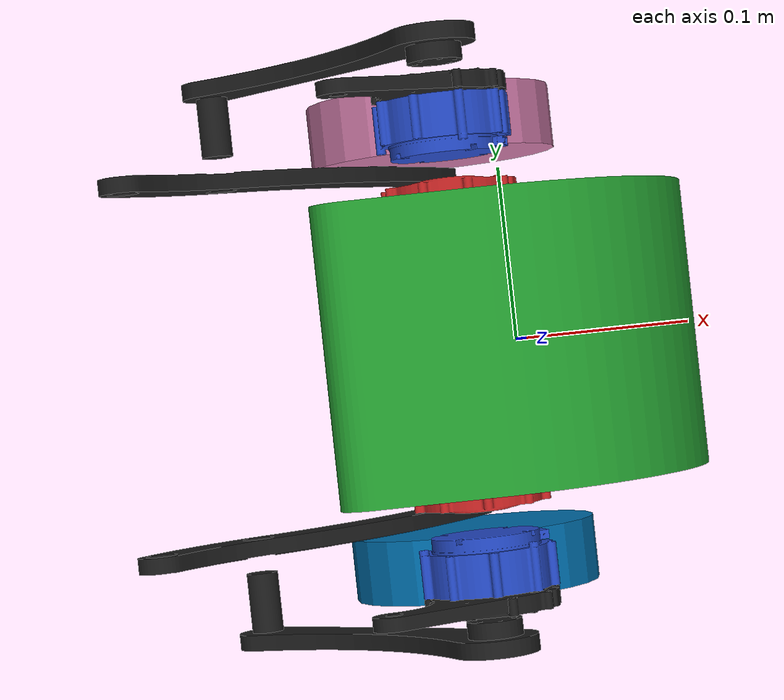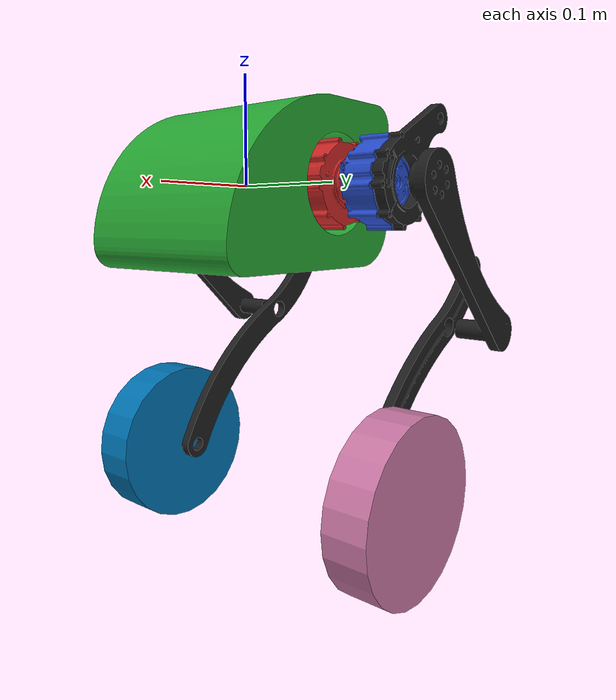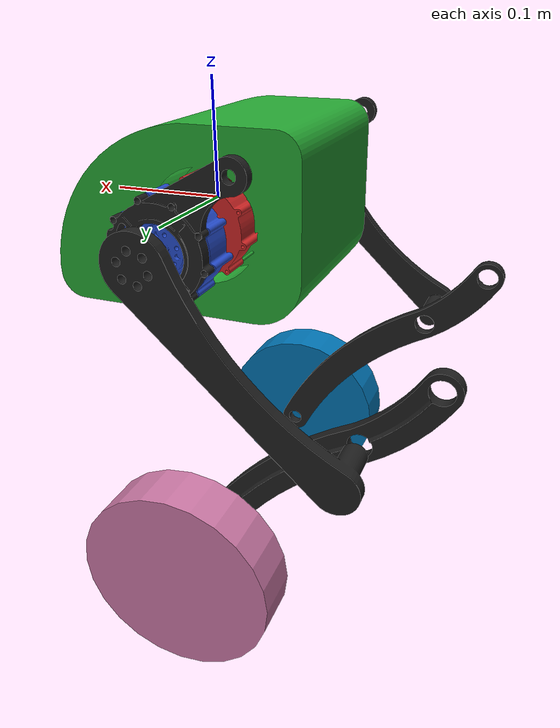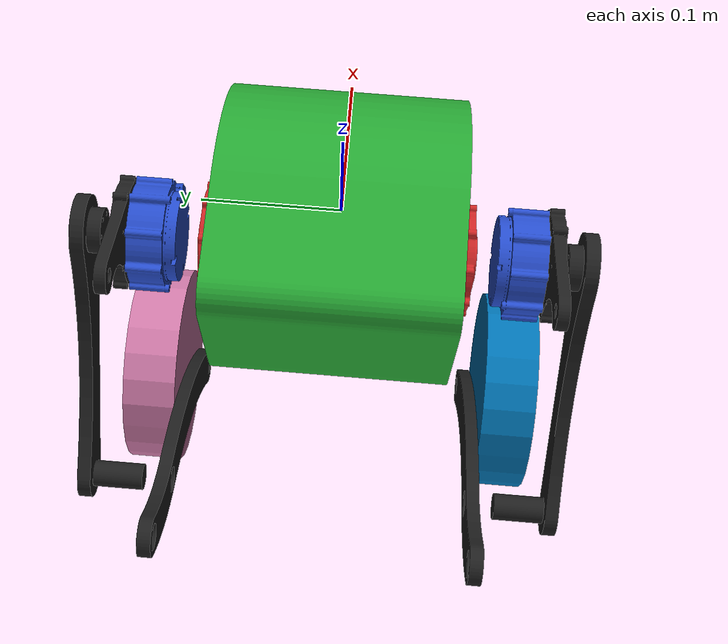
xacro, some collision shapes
<?xml version="1.0"?>
<robot xmlns:xacro="http://www.ros.org/wiki/xacro" name="otto">
    <!-- Declare PI -->
    <xacro:property name="PI" value="3.14159265359"/>
    <xacro:include filename="gazebo.xacro"/>

    <!-- Base Link -->
    <link name="base_link">
        <inertial>
          <origin xyz="0.0 0.0 0.0" rpy="0 0 0"/>
          <mass value="5.21707"/>
          <inertia ixx="25.36345483" ixy="0.0" ixz="-2.72079904"
                   iyx="0.0" iyy="28.97825187" iyz="0.0"
                   izx="-2.72079904" izy="0.0" izz="35.16013094" />
        </inertial>

        <visual>
            <origin rpy="0.0 0.0 0.0" xyz="0.0 0.0 0.0"/>
            <geometry>
              <mesh filename='file:///$(find otto_simulation)/meshes/Body.STL' scale="0.001 0.001 0.001"/>
            </geometry>
        </visual>

        <collision>
            <origin rpy="0.0 0.0 0.0" xyz="0.0 0.0 0.0"/>
            <geometry>
                <box size="0.20 0.19 0.15"/>
            </geometry>
        </collision>
    </link>

    <!-- Hip Motor Left -->
    <link name="hip_motorL">
      <inertial>
        <origin xyz="0.0 0.0 0.0" rpy="0 0 0"/>
        <mass value="0.11255"/>
        <inertia ixx="0.090104" ixy="0.000735" ixz="0.00035172"
                 iyx="0.000735" iyy="0.074462" iyz="0.000140"
                 izx="0.000351" izy="0.000140" izz="0.091432" />
      </inertial>

      <visual>
          <origin rpy="0.0 0.0 0.0" xyz="0.0 0.0 0.0"/>
          <geometry>
            <mesh filename='file:///$(find otto_simulation)/meshes/CyberGearmotor.STL' scale="0.001 0.001 0.001"/>
          </geometry>
      </visual>
    </link>

    <!-- Knee Motor Left -->
    <link name="knee_motorL">
      <inertial>
        <origin xyz="0.0 0.0 0.0" rpy="0 0 0"/>
        <mass value="0.11255"/>
        <inertia ixx="0.090104" ixy="0.000735" ixz="0.00035172"
                 iyx="0.000735" iyy="0.074462" iyz="0.000140"
                 izx="0.000351" izy="0.000140" izz="0.091432" />
      </inertial>
      <visual>
          <origin rpy="0.0 0.0 0.0" xyz="0.0 0.0 0.0"/>
          <geometry>
            <mesh filename='file:///$(find otto_simulation)/meshes/CyberGearmotor.STL' scale="0.001 0.001 0.001"/>
          </geometry>
      </visual>
    </link>

    <!-- Hip link Left -->
    <link name="hip_linkL">
      <inertial>
        <origin xyz="0.0 0.0 0.0" rpy="0 0 0"/>
        <mass value="0.036"/>
        <inertia ixx="0.038283" ixy="-0.00189" ixz="-0.020858"
                 iyx="0.00189" iyy="0.066365" iyz="0.0021110"
                 izx="0.0208580" izy="0.0021110" izz="0.030274" />
      </inertial>
      <visual>
          <origin rpy="0.0 0.0 0.0" xyz="0.0 0.0 0.0"/>
          <geometry>
            <mesh filename='file:///$(find otto_simulation)/meshes/link1.STL' scale="0.001 0.001 0.001"/>
          </geometry>
      </visual>
    </link>

    <!-- Knee link Left -->
    <link name="knee_linkL">
      <inertial>
        <origin xyz="0.0 0.0 0.0" rpy="0 0 0"/>
        <mass value="0.096"/>
        <inertia ixx="0.808404" ixy="-0.054285" ixz="0.744011"
                 iyx="-0.054285" iyy="1.51041728" iyz="-0.061449"
                 izx="0.744011" izy="-0.061449" izz="0.743050" />
      </inertial>
      <visual>
          <origin rpy="0.0 0.0 0.0" xyz="0.0 0.0 0.0"/>
          <geometry>
            <mesh filename='file:///$(find otto_simulation)/meshes/link2.STL' scale="0.001 0.001 0.001"/>
          </geometry>
      </visual>
    </link>

    <!-- Leg link Left -->
    <link name="leg_linkL">
      <inertial>
        <origin xyz="0.0 0.0 0.0" rpy="0 0 0"/>
        <mass value="0.08537"/>
        <inertia ixx="0.421600" ixy="0.022038" ixz="-0.474866"
                 iyx="0.022038" iyy="0.982737" iyz="-0.017606"
                 izx="-0.474866" izy="-0.017606" izz="0.566988" />
      </inertial>
      <visual>
          <origin rpy="0.0 0.0 0.0" xyz="0.0 0.0 0.0"/>
          <geometry>
            <mesh filename='file:///$(find otto_simulation)/meshes/link4.STL' scale="0.001 0.001 0.001"/>
          </geometry>
      </visual>
    </link>

    <!-- wheel link Left -->
    <link name="wheel_linkL">
      <inertial>
        <origin xyz="0.0 0.0 0.0" rpy="0 0 0"/>
        <mass value="0.51691"/>
        <inertia ixx="1.717624" ixy="0.000049" ixz="-0.000006"
                 iyx="0.000049" iyy="2.388020" iyz="0.000004"
                 izx="-0.000006" izy="-0.000015" izz="1.717603" />
      </inertial>

      <visual>
          <origin rpy="${PI} 0.0 0.0" xyz="0.0 0.0 0.0"/>
          <geometry>
            <mesh filename='file:///$(find otto_simulation)/meshes/ODriveBotwheel.STL' scale="0.001 0.001 0.001"/>
          </geometry>
      </visual>
      <collision>
        <origin rpy="${PI/2} 0.0 0.0" xyz="0.0 0.02 0.0"/>
        <geometry>
            <cylinder radius="0.086" length="0.04416"/>
        </geometry>
      </collision>

    </link>

    <joint name="hip_jointL" type="continuous">
      <parent link="base_link"/>
      <child link="hip_motorL"/>
        <origin rpy="0.0 0.0 0.0" xyz="-0.03 0.06 0.0"/>
        <axis xyz="0.0 1.0 0.0"/>
      <dynamics damping="0.1" friction="0.05"/>
    </joint>

    <joint name="hip_motorL_to_knee_motorL" type="fixed">
      <parent link="hip_motorL"/>
      <child link="knee_motorL"/>
      <origin rpy="0.0 0.0 0.0" xyz="0.0 0.05 0.0"/>
    </joint>

    <joint name="hip_motorL_to_hip_linkL" type="fixed">
      <parent link="knee_motorL"/>
      <child link="hip_linkL"/>
      <origin rpy="0.0 0.0 0.0" xyz="0.0 0.035 0.0"/>
    </joint>

    <joint name="knee_jointL" type="continuous">
      <parent link="knee_motorL"/>
      <child link="knee_linkL"/>
      <origin rpy="0.0 0.0 0.0" xyz="0.0 0.055 0.0"/>
      <axis xyz="0.0 1.0 0.0"/>
      <dynamics damping="0.1" friction="0.05"/>
    </joint>

    <joint name="virtualhip_jointL" type="continuous">
      <parent link="knee_linkL"/>
      <child link="leg_linkL"/>
      <origin rpy="0.0 0.0 0.0" xyz="-0.1414 -0.05 -0.1414"/>
      <axis xyz="0.0 1.0 0.0"/>
      <dynamics damping="0.1" friction="0.05"/>
    </joint>

    <joint name="wheel_jointL" type="continuous">
      <parent link="leg_linkL"/>
      <child link="wheel_linkL"/>
      <origin rpy="0.0 0.0 0.0" xyz="0.1414 0.02 -0.1414"/>
      <axis xyz="0.0 1.0 0.0"/>
      <dynamics damping="0.1" friction="0.05"/>
    </joint>

    <!-- Right Side -->

    <!-- Hip Motor Right -->
    <link name="hip_motorR">
      <inertial>
        <origin xyz="0.0 0.0 0.0" rpy="0 0 0"/>
        <mass value="0.11255"/>
        <inertia ixx="0.090104" ixy="0.000735" ixz="0.00035172"
                 iyx="0.000735" iyy="0.074462" iyz="0.000140"
                 izx="0.000351" izy="0.000140" izz="0.091432" />
      </inertial>
      <visual>
          <origin rpy="${PI} 0.0 0.0" xyz="0.0 0.0 0.0"/>
          <geometry>
            <mesh filename='file:///$(find otto_simulation)/meshes/CyberGearmotor.STL' scale="0.001 0.001 0.001"/>
          </geometry>
      </visual>
    </link>

    <!-- Knee Motor Right -->
    <link name="knee_motorR">
      <inertial>
        <origin xyz="0.0 0.0 0.0" rpy="0 0 0"/>
        <mass value="0.096"/>
        <inertia ixx="0.808404" ixy="0.054285" ixz="0.744011"
                 iyx="0.054285" iyy="1.51041728" iyz="0.061449"
                 izx="0.744011" izy="0.061449" izz="0.743050" />
      </inertial>
      <visual>
          <origin rpy="${PI} 0.0 0.0" xyz="0.0 0.0 0.0"/>
          <geometry>
            <mesh filename='file:///$(find otto_simulation)/meshes/CyberGearmotor.STL' scale="0.001 0.001 0.001"/>
          </geometry>
      </visual>

    </link>

    <!-- Hip link Right -->
    <link name="hip_linkR">
      <inertial>
        <origin xyz="0.0 0.0 0.0" rpy="0 0 0"/>
        <mass value="0.036"/>
        <inertia ixx="0.038283" ixy="0.00189" ixz="-0.020858"
                 iyx="0.00189" iyy="0.066365" iyz="-0.0021110"
                 izx="-0.0208580" izy="-0.0021110" izz="0.030274" />
      </inertial>
      <visual>
          <origin rpy="0.0 0.0 0.0" xyz="0.0 0.0 0.0"/>
          <geometry>
            <mesh filename='file:///$(find otto_simulation)/meshes/link1R.STL' scale="0.001 0.001 0.001"/>
          </geometry>
      </visual>
    </link>

    <!-- Knee link Right -->
    <link name="knee_linkR">
      <inertial>
        <origin xyz="0.0 0.0 0.0" rpy="0 0 0"/>
        <mass value="0.096"/>
        <inertia ixx="0.808404" ixy="0.054285" ixz="0.744011"
                 iyx="0.054285" iyy="1.51041728" iyz="0.061449"
                 izx="0.744011" izy="-0.061449" izz="0.743050" />
      </inertial>
      <visual>
          <origin rpy="0.0 0.0 0.0" xyz="0.0 0.0 0.0"/>
          <geometry>
            <mesh filename='file:///$(find otto_simulation)/meshes/link2R.STL' scale="0.001 0.001 0.001"/>
          </geometry>
      </visual>
    </link>

    <!-- Leg link Right -->
    <link name="leg_linkR">
      <inertial>
        <origin xyz="0.0 0.0 0.0" rpy="0 0 0"/>
        <mass value="0.08537"/>
        <inertia ixx="0.421600" ixy="-0.022038" ixz="-0.474866"
                 iyx="-0.022038" iyy="0.982737" iyz="0.017606"
                 izx="-0.474866" izy="0.017606" izz="0.566988" />
      </inertial>
      <visual>
          <origin rpy="0.0 0.0 0.0" xyz="0.0 0.0 0.0"/>
          <geometry>
            <mesh filename='file:///$(find otto_simulation)/meshes/link4R.STL' scale="0.001 0.001 0.001"/>
          </geometry>
      </visual>
    </link>

    <!-- wheel link Right -->
    <link name="wheel_linkR">
      <inertial>
        <origin xyz="0.0 0.0 0.0" rpy="0 0 0"/>
        <mass value="0.51691"/>
        <inertia ixx="1.717624" ixy="0.000049" ixz="-0.000006"
                 iyx="0.000049" iyy="2.388020" iyz="0.000004"
                 izx="-0.000006" izy="-0.000015" izz="1.717603" />
      </inertial>

      <visual>
          <origin rpy="0.0 0.0 0.0" xyz="0.0 0.0 0.0"/>
          <geometry>
            <mesh filename='file:///$(find otto_simulation)/meshes/ODriveBotwheel.STL' scale="0.001 0.001 0.001"/>
          </geometry>
      </visual>
      <collision>
        <origin rpy="${PI/2} 0.0 0.0" xyz="0.0 -0.02 0.0"/>
        <geometry>
            <cylinder radius="0.086" length="0.04416"/>
        </geometry>
      </collision>
    </link>

    <joint name="hip_jointR" type="continuous">
      <parent link="base_link"/>
      <child link="hip_motorR"/>
        <origin rpy="0.0 0.0 0.0" xyz="-0.03 -0.06 0.0"/>
        <axis xyz="0.0 1.0 0.0"/>
        <dynamics damping="0.1" friction="0.05"/>
    </joint>

    <joint name="hip_motorR_to_knee_motorR" type="fixed">
      <parent link="hip_motorR"/>
      <child link="knee_motorR"/>
      <origin rpy="0.0 0.0 0.0" xyz="0.0 -0.05 0.0"/>
    </joint>

    <joint name="hip_motorR_to_hip_linkR" type="fixed">
      <parent link="knee_motorR"/>
      <child link="hip_linkR"/>
      <origin rpy="0.0 0.0 0.0" xyz="0.0 -0.035 0.0"/>
    </joint>

    <joint name="knee_jointR" type="continuous">
      <parent link="knee_motorR"/>
      <child link="knee_linkR"/>
      <origin rpy="0.0 0.0 0.0" xyz="0.0 -0.05 0.0"/>
      <axis xyz="0.0 1.0 0.0"/>
      <dynamics damping="0.1" friction="0.05"/>
    </joint>

    <joint name="virtualhip_jointR" type="continuous">
      <parent link="knee_linkR"/>
      <child link="leg_linkR"/>
      <origin rpy="0.0 0.0 0.0" xyz="-0.1414 0.05 -0.1414"/>
      <axis xyz="0.0 1.0 0.0"/>
      <dynamics damping="0.1" friction="0.05"/>
    </joint>

    <joint name="wheel_jointR" type="continuous">
      <parent link="leg_linkR"/>
      <child link="wheel_linkR"/>
      <origin rpy="0.0 0.0 0.0" xyz="0.1414 -0.02 -0.1414"/>
      <axis xyz="0.0 1.0 0.0"/>
      <dynamics damping="0.1" friction="0.05"/>
    </joint>

</robot>
